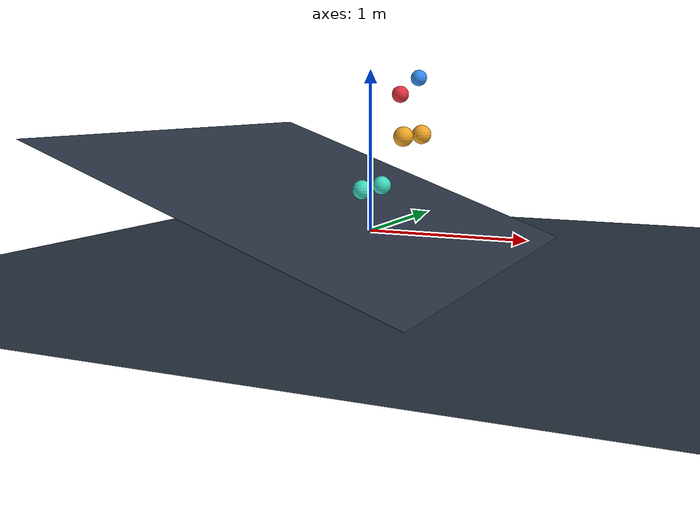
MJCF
<mujoco model="robotic_marble_music_machine">
  <compiler angle="radian" inertiafromgeom="true"/>
  <option timestep="0.002" gravity="0 0 -9.81" integrator="Euler" iterations="1000" tolerance="1e-6" density="1.2" viscosity="0.00002">
    <flag contact="enable" equality="enable" limit="enable" frictionloss="enable"/>
  </option>

  <asset>
    <texture name="checker" type="2d" builtin="checker" width="512" height="512"
      rgb1="0.12 0.15 0.20" rgb2="0.22 0.28 0.35"/>
    <material name="track_mat" texture="checker" texrepeat="8 8" reflectance="0.1"/>
    <material name="paddle_mat" rgba="0.95 0.65 0.15 1" specular="0.8" shininess="0.5"/>
    <material name="chime_mat" rgba="0.25 0.85 0.75 1" specular="0.9" shininess="0.8"/>
    <material name="marble1_mat" rgba="0.90 0.20 0.25 1" specular="0.9" shininess="0.9"/>
    <material name="marble2_mat" rgba="0.20 0.55 0.95 1" specular="0.9" shininess="0.9"/>
  </asset>

  <default>
    <geom condim="3" friction="0.25 0.05 0.05" solref="0.015 1.0" solimp="0.9 0.95 0.001 0.5 2"/>
  </default>

  <worldbody>
    <light directional="true" pos="0 -2 5" dir="0 0.3 -1" diffuse="0.9 0.9 0.9" specular="0.3 0.3 0.3"/>

    <!-- Floor / catch basin (decorative boundary) -->
    <geom name="floor" type="plane" size="3 3 0.1" pos="0 0 -0.2" material="track_mat"
      contype="0" conaffinity="0"/>

    <!-- Tilted soundboard track / ramp guiding deflected marbles into chime resonators -->
    <geom name="track" type="plane" size="1.5 1.5 0.05" pos="0 0 0.1"
      quat="0.98480775 0 0.17364818 0" material="track_mat"
      contype="1" conaffinity="0"/>

    <!-- Robotic Selector Gate / Paddle 1 (Motorized, with offset paddle arm sweeping 3D arc) -->
    <body name="gate1" pos="0.2 -0.15 0.6">
      <joint name="gate1_hinge" type="hinge" axis="0 1 0" range="-0.6 0.6" limited="true" frictionloss="0.03" damping="0.06"/>
      <geom name="gate1_bar" type="sphere" size="0.06" pos="0.08 0 0" material="paddle_mat" mass="0.3"
        contype="4" conaffinity="0"/>
    </body>

    <!-- Linked Follower Gate 2 (Constrained by joint equality, with offset paddle arm) -->
    <body name="gate2" pos="0.2 0.15 0.6">
      <joint name="gate2_hinge" type="hinge" axis="0 1 0" range="-0.6 0.6" limited="true" frictionloss="0.03" damping="0.06"/>
      <geom name="gate2_bar" type="sphere" size="0.06" pos="0.08 0 0" material="paddle_mat" mass="0.3"
        contype="4" conaffinity="0"/>
    </body>

    <!-- Tuned Chime Bar / Resonator 1 (Spring/Damper Passive dynamics with offset clapper) -->
    <body name="chime1" pos="-0.05 -0.15 0.25">
      <joint name="chime1_hinge" type="hinge" axis="0 1 0" range="-0.6 0.6" limited="true"
        stiffness="35.0" damping="0.15" springref="0.0"/>
      <geom name="chime1_sphere" type="sphere" size="0.06" pos="0.06 0 0.02" material="chime_mat" mass="0.25"
        contype="4" conaffinity="0"/>
    </body>

    <!-- Tuned Chime Bar / Resonator 2 (Higher pitch, stiffer spring with offset clapper) -->
    <body name="chime2" pos="-0.05 0.15 0.25">
      <joint name="chime2_hinge" type="hinge" axis="0 1 0" range="-0.6 0.6" limited="true"
        stiffness="55.0" damping="0.20" springref="0.0"/>
      <geom name="chime2_sphere" type="sphere" size="0.06" pos="0.06 0 0.02" material="chime_mat" mass="0.25"
        contype="4" conaffinity="0"/>
    </body>

    <!-- Red Marble 1 -->
    <body name="marble1" pos="0.26 -0.15 0.85">
      <freejoint name="marble1_free"/>
      <geom name="marble1_sphere" type="sphere" size="0.05" mass="0.25" material="marble1_mat"
        contype="2" conaffinity="7"/>
    </body>

    <!-- Blue Marble 2 -->
    <body name="marble2" pos="0.26 0.15 0.95">
      <freejoint name="marble2_free"/>
      <geom name="marble2_sphere" type="sphere" size="0.05" mass="0.25" material="marble2_mat"
        contype="2" conaffinity="7"/>
    </body>
  </worldbody>

  <equality>
    <!-- Symmetrical counter-rotating dual gate mechanism -->
    <joint joint1="gate2_hinge" joint2="gate1_hinge" polycoef="0 -1.0 0 0 0"/>
  </equality>

  <tendon>
    <!-- Fixed tendon drive coupling gate 1 to chime 1 for rhythmic modulation -->
    <fixed name="gate_tendon" stiffness="6.0" damping="0.05" armature="0.005">
      <joint joint="gate1_hinge" coef="0.4"/>
      <joint joint="chime1_hinge" coef="0.2"/>
    </fixed>
  </tendon>

  <actuator>
    <!-- Rhythmic servo/motor actuating the primary selector gate -->
    <motor name="gate_motor" joint="gate1_hinge" ctrlrange="-2 2"/>
  </actuator>

  <sensor>
    <jointpos joint="gate1_hinge" name="gate_angle"/>
    <jointvel joint="gate1_hinge" name="gate_vel"/>
    <jointpos joint="chime1_hinge" name="chime1_displacement"/>
    <jointpos joint="chime2_hinge" name="chime2_displacement"/>
  </sensor>
</mujoco>
